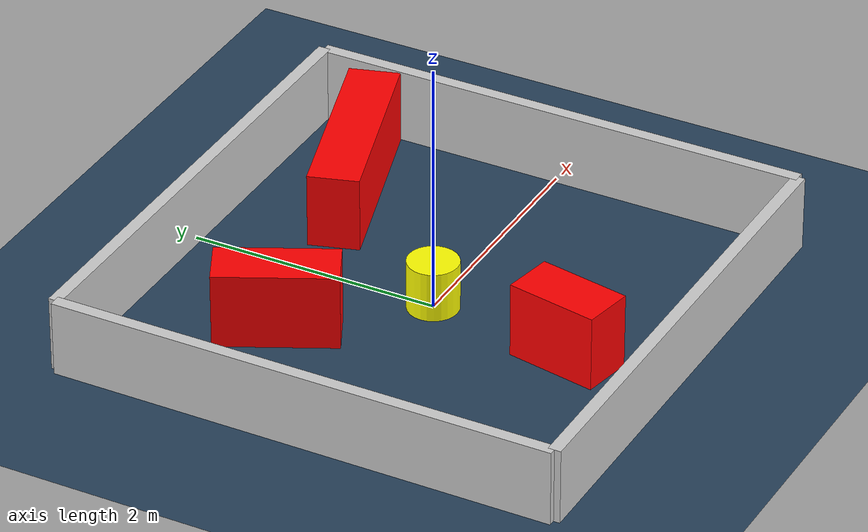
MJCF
<?xml version="1.0" ?>
<mujoco model="generated_environment">
  <option timestep="0.01" integrator="RK4" cone="elliptic"/>
  <default>
    <geom density="1"/>
  </default>
  <asset>
    <texture builtin="gradient" height="3072" rgb1="0.3 0.5 0.7" rgb2="0 0 0" type="skybox" width="512"/>
    <texture builtin="checker" height="300" mark="edge" markrgb="0.8 0.8 0.8" name="groundplane" rgb1="0.2 0.3 0.4" rgb2="0.1 0.2 0.3" type="2d" width="300"/>
    <material name="groundplane" reflectance="0.2" texrepeat="5 5" texture="groundplane" texuniform="true"/>
    <material name="robot" rgba="0.0 1.0 0.0 1"/>
  </asset>
  <worldbody>
    <light dir="0 0 -1" directional="true" pos="0 0 1.5"/>
    <geom condim="4" friction="1.0 0.005 0.001" material="groundplane" name="floor" size="0 0 0.05" type="plane"/>
    <body name="walls">
      <geom name="wall_1" condim="4" pos="-2.0 0.0 0.3" rgba="0.800000011920929 0.800000011920929 0.800000011920929 1.0" size="0.05 2.0 0.3" type="box"/>
      <geom name="wall_2" condim="4" pos="2.0 0.0 0.3" rgba="0.800000011920929 0.800000011920929 0.800000011920929 1.0" size="0.05 2.0 0.3" type="box"/>
      <geom name="wall_3" condim="4" pos="0.0 -2.0 0.3" rgba="0.800000011920929 0.800000011920929 0.800000011920929 1.0" size="2.0 0.05 0.3" type="box"/>
      <geom name="wall_4" condim="4" pos="0.0 2.0 0.3" rgba="0.800000011920929 0.800000011920929 0.800000011920929 1.0" size="2.0 0.05 0.3" type="box"/>
    </body>
    <body name="robot">
      <joint name="joint_x" type="slide" pos="0 0 0" axis="1 0 0"/>
      <joint name="joint_y" type="slide" pos="0 0 0" axis="0 1 0"/>
      <geom name="robot" type="sphere" pos="0.3 0.0 0.2" size="0.05" mass="5." friction="1.0 0.005 0.0001" condim="4" rgba="0.5 0.5 0.5 1.0"/>
      <site name="sensor_ball"/>
    </body>
    <body name="obstacle_movable_1">
      <geom name="obstacle_movable_1" condim="4" pos="0.0 0.0 0.2" euler="0 0 0.0" friction="1.0 0.005 0.001" rgba="1.0 1.0 0.0 1.0" size="0.2 0.2 0.0" type="cylinder" mass="0.1"/>
      <joint type="free"/>
    </body>
    <body name="obstacle_2_static">
      <geom name="obstacle_2_static" condim="4" pos="-0.16976063552023835 -1.18122088344201 0.3" euler="0 0 79.33080306771173" friction="1.0 0.005 0.001" rgba="1 0 0 1" size="0.366420638981462 0.2 0.3" type="box"/>
    </body>
    <body name="obstacle_3_static">
      <geom name="obstacle_3_static" condim="4" pos="1.1197654438149216 1.2645745694333732 0.3" euler="0 0 17.19577746543517" friction="1.0 0.005 0.001" rgba="1 0 0 1" size="0.793440468274593 0.2 0.3" type="box"/>
    </body>
    <body name="obstacle_4_static">
      <geom name="obstacle_4_static" condim="4" pos="-0.8307966299551671 0.8418920974221875 0.3" euler="0 0 296.3545286896809" friction="1.0 0.005 0.001" rgba="1 0 0 1" size="0.4693318782281339 0.2 0.3" type="box"/>
    </body>
  </worldbody>
  <actuator>
    <motor name="actuator_x" joint="joint_x" gear="1" ctrlrange="-1 1"/>
    <motor name="actuator_y" joint="joint_y" gear="1" ctrlrange="-1 1"/>
  </actuator>
</mujoco>
